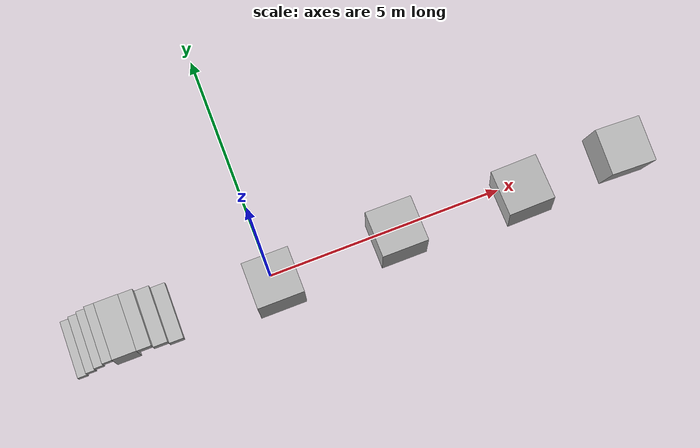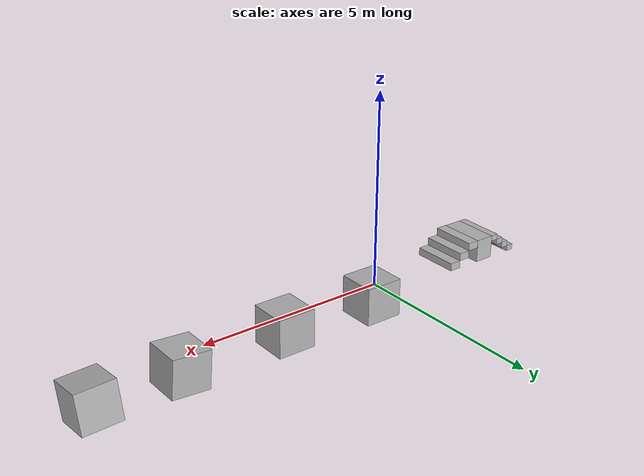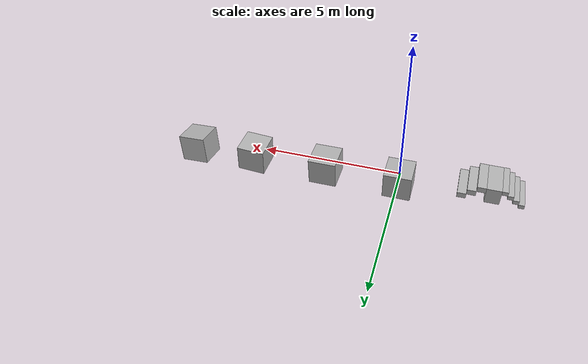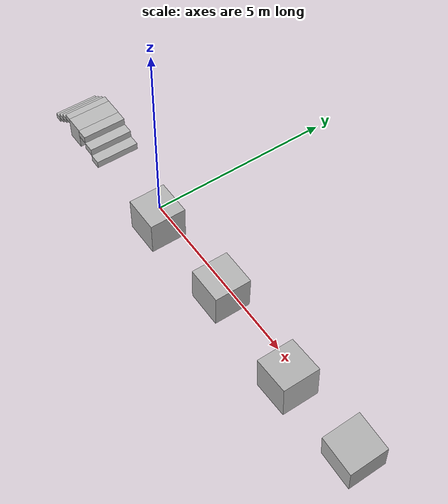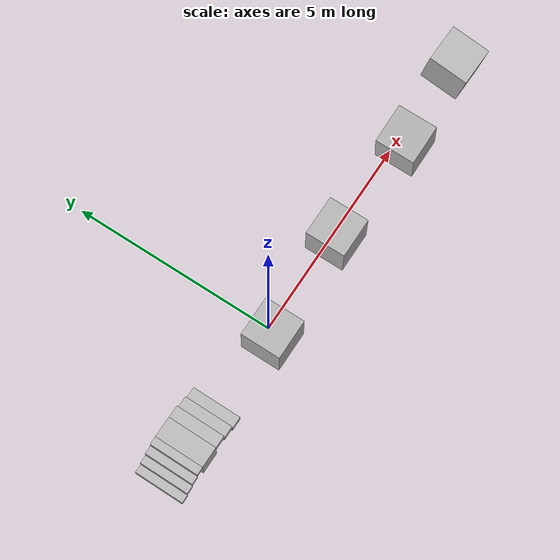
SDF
<sdf version="1.7">
 <world name="example">
  <physics name="4ms" type="dart">
   <max_step_size>0.004</max_step_size>
   <real_time_factor>10</real_time_factor>
   <real_time_update_rate>1000</real_time_update_rate>
  </physics>
  <scene><ambient>0.2 0.2 0.2 1</ambient><background>0.8 0.8 0.8 1</background><shadows>1</shadows></scene>
  <light name="sun" type="directional">
   <pose>0 0 10 0 -0 0</pose>
   <diffuse>0.8 0.8 0.8 1</diffuse>
   <specular>0.8 0.8 0.8 1</specular>
   <attenuation>
    <range>1</range>
    <constant>0.9</constant>
    <linear>1</linear>
    <quadratic>0.001</quadratic>
   </attenuation>
   <direction>0 0 -1</direction>
   <spot><inner_angle>0</inner_angle><outer_angle>0</outer_angle><falloff>0</falloff></spot>
  </light>
  <light name="light1" type="point">
   <pose>0 0 4 0 -0 0</pose>
   <attenuation>
    <range>1000</range>
    <linear>0</linear>
    <constant>0.1</constant>
    <quadratic>0.005</quadratic>
   </attenuation>
   <diffuse>0.8 0.8 0.8 1</diffuse>
   <specular>0.8 0.8 0.8 1</specular>
   <spot><inner_angle>5</inner_angle><outer_angle>10.1</outer_angle><falloff>0.1</falloff></spot>
   <direction>0 0 -1</direction>
  </light>
  <light name="light2" type="spot">
   <pose>0 0 4 0 -0 0</pose>
   <attenuation>
    <range>1000</range>
    <linear>0.1</linear>
    <constant>0.2</constant>
    <quadratic>0.005</quadratic>
   </attenuation>
   <diffuse>0.8 0.8 0.5 1</diffuse>
   <specular>0.8 0.8 0.5 1</specular>
   <spot><inner_angle>5</inner_angle><outer_angle>10.1</outer_angle><falloff>0.1</falloff></spot>
   <direction>0 0 -1</direction>
  </light>
  <gravity>0 0 -9.8</gravity>
  <magnetic_field>6e-06 2.3e-05 -4.2e-05</magnetic_field>
  <atmosphere type="adiabatic"/>
  <plugin name="__default__" filename="__default__"/>
  <model name="tst_stairs">
   <pose>-3.12973 0.000103 0 0 -0 1.57</pose>
   <link name="Stairs_11">
    <visual name="Stairs_11_Visual_0">
     <pose>-0.002619 -0.949353 0.1 0 -0 -3.14159</pose>
     <geometry><box><size>1.2 0.3 0.2</size></box></geometry>
     <meta><layer>0</layer></meta>
     <plugin name="__default__" filename="__default__"/>
    </visual>
    <collision name="Stairs_11_Collision_0">
     <geometry><box><size>1.2 0.3 0.2</size></box></geometry>
     <pose>-0.002619 -0.949353 0.1 0 -0 -3.14159</pose>
    </collision>
    <visual name="Stairs_11_Visual_1">
     <pose>-0.002619 -0.649353 0.3 0 -0 -3.14159</pose>
     <geometry><box><size>1.2 0.3 0.2</size></box></geometry>
     <meta><layer>0</layer></meta>
     <plugin name="__default__" filename="__default__"/>
    </visual>
    <collision name="Stairs_11_Collision_1">
     <geometry><box><size>1.2 0.3 0.2</size></box></geometry>
     <pose>-0.002619 -0.649353 0.3 0 -0 -3.14159</pose>
    </collision>
    <visual name="Stairs_11_Visual_2">
     <pose>-0.002619 -0.349353 0.5 0 -0 -3.14159</pose>
     <geometry><box><size>1.2 0.3 0.2</size></box></geometry>
     <meta><layer>0</layer></meta>
     <plugin name="__default__" filename="__default__"/>
    </visual>
    <collision name="Stairs_11_Collision_2">
     <geometry><box><size>1.2 0.3 0.2</size></box></geometry>
     <pose>-0.002619 -0.349353 0.5 0 -0 -3.14159</pose>
    </collision>
   </link>
   <link name="Stairs_7">
    <visual name="Stairs_7_Visual_0">
     <pose>0.001265 0.999354 0.075 0 -0 0</pose>
     <geometry><box><size>1.2 0.2 0.15</size></box></geometry>
     <meta><layer>0</layer></meta>
     <plugin name="__default__" filename="__default__"/>
    </visual>
    <collision name="Stairs_7_Collision_0">
     <geometry><box><size>1.2 0.2 0.15</size></box></geometry>
     <pose>0.001265 0.999354 0.075 0 -0 0</pose>
    </collision>
    <visual name="Stairs_7_Visual_1">
     <pose>0.001265 0.799354 0.225 0 -0 0</pose>
     <geometry><box><size>1.2 0.2 0.15</size></box></geometry>
     <meta><layer>0</layer></meta>
     <plugin name="__default__" filename="__default__"/>
    </visual>
    <collision name="Stairs_7_Collision_1">
     <geometry><box><size>1.2 0.2 0.15</size></box></geometry>
     <pose>0.001265 0.799354 0.225 0 -0 0</pose>
    </collision>
    <visual name="Stairs_7_Visual_2">
     <pose>0.001265 0.599354 0.375 0 -0 0</pose>
     <geometry><box><size>1.2 0.2 0.15</size></box></geometry>
     <meta><layer>0</layer></meta>
     <plugin name="__default__" filename="__default__"/>
    </visual>
    <collision name="Stairs_7_Collision_2">
     <geometry><box><size>1.2 0.2 0.15</size></box></geometry>
     <pose>0.001265 0.599354 0.375 0 -0 0</pose>
    </collision>
    <visual name="Stairs_7_Visual_3">
     <pose>0.001265 0.399354 0.525 0 -0 0</pose>
     <geometry><box><size>1.2 0.2 0.15</size></box></geometry>
     <meta><layer>0</layer></meta>
     <plugin name="__default__" filename="__default__"/>
    </visual>
    <collision name="Stairs_7_Collision_3">
     <geometry><box><size>1.2 0.2 0.15</size></box></geometry>
     <pose>0.001265 0.399354 0.525 0 -0 0</pose>
    </collision>
   </link>
   <link name="Stairs_9">
    <visual name="Stairs_9_Visual_0">
     <pose>0.002619 0.049354 0.3 0 -0 0</pose>
     <geometry><box><size>1.2 0.5 0.6</size></box></geometry>
     <meta><layer>0</layer></meta>
     <plugin name="__default__" filename="__default__"/>
    </visual>
    <collision name="Stairs_9_Collision_0">
     <geometry><box><size>1.2 0.5 0.6</size></box></geometry>
     <pose>0.002619 0.049354 0.3 0 -0 0</pose>
    </collision>
   </link>
   <static>1</static>
   <plugin name="__default__" filename="__default__"/>
  </model>
  <model name="box">
   <static>1</static>
   <pose>0.025861 -0.086193 -0.327447 0 -0 0</pose>
   <link name="box_link">
    <inertial>
     <inertia><ixx>0.167</ixx><ixy>0</ixy><ixz>0</ixz><iyy>0.167</iyy><iyz>0</iyz><izz>0.167</izz></inertia>
     <mass>1</mass>
    </inertial>
    <collision name="box_collision"><geometry><box><size>1 1 1</size></box></geometry></collision>
    <visual name="box_visual">
     <geometry><box><size>1 1 1</size></box></geometry>
     <material>
      <ambient>0.3 0.3 0.3 1</ambient>
      <diffuse>0.7 0.7 0.7 1</diffuse>
      <specular>1 1 1 1</specular>
     </material>
    </visual>
   </link>
  </model>
  <model name="box_0">
   <static>1</static>
   <pose>2.73785 -0.015992 -0.253085 -0 -0 -0</pose>
   <link name="box_link">
    <inertial>
     <inertia><ixx>0.167</ixx><ixy>0</ixy><ixz>0</ixz><iyy>0.167</iyy><iyz>0</iyz><izz>0.167</izz></inertia>
     <mass>1</mass>
    </inertial>
    <collision name="box_collision"><geometry><box><size>1 1 1</size></box></geometry></collision>
    <visual name="box_visual">
     <geometry><box><size>1 1 1</size></box></geometry>
     <material>
      <ambient>0.3 0.3 0.3 1</ambient>
      <diffuse>0.7 0.7 0.7 1</diffuse>
      <specular>1 1 1 1</specular>
     </material>
    </visual>
   </link>
  </model>
  <model name="box_1">
   <static>1</static>
   <pose>5.53856 -0.108356 -0.367305 0 -0.074173 0</pose>
   <link name="box_link">
    <inertial>
     <inertia><ixx>0.167</ixx><ixy>0</ixy><ixz>0</ixz><iyy>0.167</iyy><iyz>0</iyz><izz>0.167</izz></inertia>
     <mass>1</mass>
    </inertial>
    <collision name="box_collision"><geometry><box><size>1 1 1</size></box></geometry></collision>
    <visual name="box_visual">
     <geometry><box><size>1 1 1</size></box></geometry>
     <material>
      <ambient>0.3 0.3 0.3 1</ambient>
      <diffuse>0.7 0.7 0.7 1</diffuse>
      <specular>1 1 1 1</specular>
     </material>
    </visual>
   </link>
  </model>
  <model name="box_2">
   <static>1</static>
   <pose>7.81071 -0.031998 -0.335482 0.136752 0.051472 -0.019045</pose>
   <link name="box_link">
    <inertial>
     <inertia><ixx>0.167</ixx><ixy>0</ixy><ixz>0</ixz><iyy>0.167</iyy><iyz>0</iyz><izz>0.167</izz></inertia>
     <mass>1</mass>
    </inertial>
    <collision name="box_collision"><geometry><box><size>1 1 1</size></box></geometry></collision>
    <visual name="box_visual">
     <geometry><box><size>1 1 1</size></box></geometry>
     <material>
      <ambient>0.3 0.3 0.3 1</ambient>
      <diffuse>0.7 0.7 0.7 1</diffuse>
      <specular>1 1 1 1</specular>
     </material>
    </visual>
   </link>
  </model>
 </world>
</sdf>
